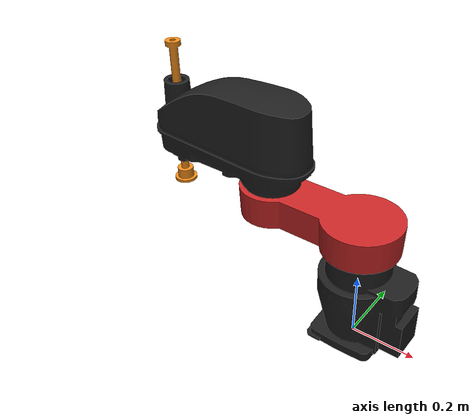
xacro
<?xml version="1.0"?>

<robot name="sr_scara_hx" xmlns:xacro="http://www.ros.org/wiki/xacro">

<xacro:property name="mass" value="1" /> 	  <!-- arbitrary value for mass -->
<xacro:property name="pos0" value="0.00158925" /> <!-- Link 1 -->
<xacro:property name="pos2" value="0.300" />      <!-- Link 2 -->
<xacro:property name="pos3" value="0" />          <!-- Link 3 -->

  <!-- Import all Gazebo-customization elements, including Gazebo colors -->
  <xacro:include filename="$(find robot_simulation)/URDF/sr_scara_hx.gazebo" />
  <!-- Import Rviz colors -->
  <xacro:include filename="$(find robot_simulation)/URDF/materials.xacro" />

<!--Links -->
<link name="base_link">
 <visual>
  <origin xyz="0 0 ${pos0}" rpy="0 0 0" />
   <geometry>
     <mesh filename="package://robot_simulation/meshes/base_R01.stl" scale="0.001 0.001 0.001"/>
   </geometry>
   <material name="black"/>
 </visual>
 <collision>
  <origin xyz="0 0 ${pos0}" rpy="0 0 0" />
   <geometry>
     <mesh filename="package://robot_simulation/meshes/base_R01.stl" scale="0.001 0.001 0.001"/>
   </geometry>
 </collision>
 <inertial>
      <origin xyz="0 0 ${pos0}" rpy="0 0 0"/>
      <mass value="${mass}"/>
      <inertia
	  ixx="0.0" ixy="0.0" ixz="0.0"
	  iyy="0.0" iyz="0.0"
	  izz="0.0" />
 </inertial>
</link>

<link name="link1">
 <visual>
  <origin xyz="0 0 0" rpy="0 0 0" />
   <geometry>
     <mesh filename="package://robot_simulation/meshes/arm_link_R01.stl" scale="0.001 0.001 0.001"/>
   </geometry>
   <material name="red"/>
 </visual>
 <collision>
  <origin xyz="0 0 0" rpy="0 0 0" />
   <geometry>
     <mesh filename="package://robot_simulation/meshes/arm_link_R01.stl" scale="0.001 0.001 0.001"/>
   </geometry>
 </collision>
 <inertial>
      <origin xyz="0 0 0" rpy="0 0 0"/>
      <mass value="${mass}"/>
      <inertia
	  ixx="" ixy="0.0" ixz="0.0"
	  iyy="" iyz="0.0"
	  izz=""/>
 </inertial>
</link>

<link name="link2">
 <visual>
  <origin xyz="${pos2} 0 0" rpy="0 0 0" />
   <geometry>
     <mesh filename="package://robot_simulation/meshes/head_link_R01.stl" scale="0.001 0.001 0.001"/>
   </geometry>
   <material name="black"/>
 </visual>
 <collision>
  <origin xyz="${pos2} 0 0" rpy="0 0 0" />
   <geometry>
     <mesh filename="package://robot_simulation/meshes/head_link_R01.stl" scale="0.001 0.001 0.001"/>
   </geometry>
  </collision>
 <inertial>
      <origin xyz="${pos2} 0 0" rpy="0 0 0"/>
      <mass value="${mass}"/>
      <inertia
	  ixx="0.0" ixy="0.0" ixz="0.0"
	  iyy="0.0" iyz="0.0"
	  izz="0.0"/>
 </inertial>
</link>

<link name="probe">
 <visual>
  <origin xyz="${pos3} 0 0" rpy="0 0 0" />
  <geometry>
     <mesh filename="package://robot_simulation/meshes/End_link_R01.stl" scale="0.001 0.001 0.001"/>
  </geometry>
  <material name="orange"/>
 </visual>
 <collision>
  <origin xyz="${pos3} 0 0" rpy="0 0 0" />
  <geometry>
     <mesh filename="package://robot_simulation/meshes/End_link_R01.stl" scale="0.001 0.001 0.001"/>
  </geometry>
 </collision>
 <inertial>
      <origin xyz="${pos3} 0 0" rpy="0 0 0"/>
      <mass value="${mass}"/>
      <inertia
	  ixx="0.0" ixy="0.0" ixz="0.0"
	  iyy="0.0" iyz="0.0"
	  izz="0.0"/>
 </inertial>
</link>

<!-- Joints -->

<joint name="joint1" type="revolute">
  <axis xyz="0 0 1" />
  <limit effort="3.0" velocity="0.01" lower="-2.617" upper="2.617"/>
  <origin xyz="0 0 0.00158925" rpy="0 0 0" />
  <parent link="base_link" />
  <child link="link1" />
</joint>

<joint name="joint2" type="revolute">
 <axis xyz="0 0 1" />
 <limit effort="3.0" velocity="0.01" lower="-2.617" upper="2.617"/>
 <origin xyz="-0.3 0 0" rpy="0 0 0" />
 <parent link="link1" />
 <child link="link2" />
</joint>

<joint name="joint3" type="prismatic">
 <axis xyz="0 0 1" />
 <limit effort="3.0" velocity="0.01" lower="-0.1" upper="0.05"/>
 <origin xyz="0.3 0 0" rpy="0 0 0" />
 <parent link="link2" />
 <child link="probe" />
</joint>

<!-- Transmissions -->

  <transmission name="tran1">
    <type>transmission_interface/SimpleTransmission</type>
    <joint name="joint1"/>
    <actuator name="motor1">
      <hardwareInterface>EffortJointInterface</hardwareInterface>
      <mechanicalReduction>1</mechanicalReduction>
    </actuator>
  </transmission>
  <transmission name="tran2">
    <type>transmission_interface/SimpleTransmission</type>
    <joint name="joint2"/>
    <actuator name="motor2">
      <hardwareInterface>EffortJointInterface</hardwareInterface>
      <mechanicalReduction>1</mechanicalReduction>
    </actuator>
  </transmission>
  <transmission name="tran3">
    <type>transmission_interface/SimpleTransmission</type>
    <joint name="joint3"/>
    <actuator name="motor3">
      <hardwareInterface>EffortJointInterface</hardwareInterface>
      <mechanicalReduction>1</mechanicalReduction>
    </actuator>
  </transmission>

</robot>
